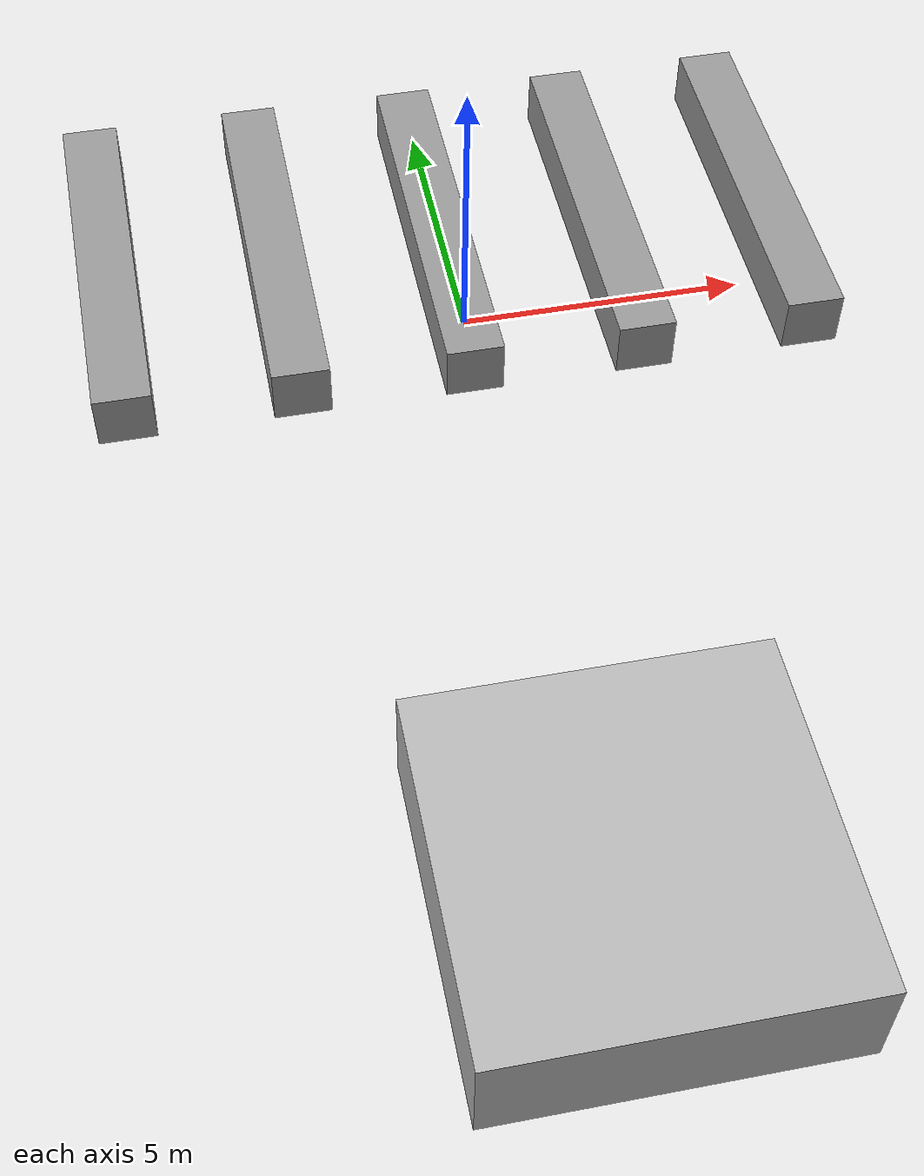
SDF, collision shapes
<?xml version='1.0'?>
<sdf version='1.6'>
  <model name='simulation_ground'>
    <link name='link_1'>
      <inertial>
        <mass>1</mass>
        <inertia>
          <ixx>0.166667</ixx>
          <ixy>0</ixy>
          <ixz>0</ixz>
          <iyy>0.166667</iyy>
          <iyz>0</iyz>
          <izz>0.166667</izz>
        </inertia>
        <pose frame=''>0 0 0 0 -0 0</pose>
      </inertial>
      <pose frame=''>2.92463 2.07612 0.249831 0 -0 0</pose>
      <gravity>1</gravity>
      <self_collide>0</self_collide>
      <kinematic>0</kinematic>
      <enable_wind>0</enable_wind>
      <visual name='visual'>
        <pose frame=''>0 0 0 0 -0 0</pose>
        <geometry>
          <box>
            <size>1 7 1</size>
          </box>
        </geometry>
        <material>
          <lighting>1</lighting>
          <script>
            <uri>file://media/materials/scripts/gazebo.material</uri>
            <name>Gazebo/Grey</name>
          </script>
          <shader type='vertex'>
            <normal_map>__default__</normal_map>
          </shader>
          <ambient>0.3 0.3 0.3 1</ambient>
          <diffuse>0.7 0.7 0.7 1</diffuse>
          <specular>0.01 0.01 0.01 1</specular>
          <emissive>0 0 0 1</emissive>
        </material>
        <transparency>0</transparency>
        <cast_shadows>1</cast_shadows>
      </visual>
      <collision name='collision'>
        <laser_retro>0</laser_retro>
        <max_contacts>10</max_contacts>
        <pose frame=''>0 0 0 0 -0 0</pose>
        <geometry>
          <box>
            <size>1 7 1</size>
          </box>
        </geometry>
        <surface>
          <friction>
            <ode>
              <mu>1</mu>
              <mu2>1</mu2>
              <fdir1>0 0 0</fdir1>
              <slip1>0</slip1>
              <slip2>0</slip2>
            </ode>
            <torsional>
              <coefficient>1</coefficient>
              <patch_radius>0</patch_radius>
              <surface_radius>0</surface_radius>
              <use_patch_radius>1</use_patch_radius>
              <ode>
                <slip>0</slip>
              </ode>
            </torsional>
          </friction>
          <bounce>
            <restitution_coefficient>0</restitution_coefficient>
            <threshold>1e+06</threshold>
          </bounce>
          <contact>
            <collide_without_contact>0</collide_without_contact>
            <collide_without_contact_bitmask>1</collide_without_contact_bitmask>
            <collide_bitmask>1</collide_bitmask>
            <ode>
              <soft_cfm>0</soft_cfm>
              <soft_erp>0.2</soft_erp>
              <kp>1e+13</kp>
              <kd>1</kd>
              <max_vel>0.01</max_vel>
              <min_depth>0</min_depth>
            </ode>
            <bullet>
              <split_impulse>1</split_impulse>
              <split_impulse_penetration_threshold>-0.01</split_impulse_penetration_threshold>
              <soft_cfm>0</soft_cfm>
              <soft_erp>0.2</soft_erp>
              <kp>1e+13</kp>
              <kd>1</kd>
            </bullet>
          </contact>
        </surface>
      </collision>
    </link>
    <link name='link_1_clone'>
      <inertial>
        <mass>1</mass>
        <inertia>
          <ixx>0.166667</ixx>
          <ixy>0</ixy>
          <ixz>0</ixz>
          <iyy>0.166667</iyy>
          <iyz>0</iyz>
          <izz>0.166667</izz>
        </inertia>
        <pose frame=''>0 0 0 0 -0 0</pose>
      </inertial>
      <pose frame=''>-0.095636 2.07867 0.249831 0 -0 0</pose>
      <gravity>1</gravity>
      <self_collide>0</self_collide>
      <kinematic>0</kinematic>
      <enable_wind>0</enable_wind>
      <visual name='visual'>
        <pose frame=''>0 0 0 0 -0 0</pose>
        <geometry>
          <box>
            <size>1 7 1</size>
          </box>
        </geometry>
        <material>
          <lighting>1</lighting>
          <script>
            <uri>file://media/materials/scripts/gazebo.material</uri>
            <name>Gazebo/Grey</name>
          </script>
          <shader type='vertex'>
            <normal_map>__default__</normal_map>
          </shader>
          <ambient>0.3 0.3 0.3 1</ambient>
          <diffuse>0.7 0.7 0.7 1</diffuse>
          <specular>0.01 0.01 0.01 1</specular>
          <emissive>0 0 0 1</emissive>
        </material>
        <transparency>0</transparency>
        <cast_shadows>1</cast_shadows>
      </visual>
      <collision name='collision'>
        <laser_retro>0</laser_retro>
        <max_contacts>10</max_contacts>
        <pose frame=''>0 0 0 0 -0 0</pose>
        <geometry>
          <box>
            <size>1 7 1</size>
          </box>
        </geometry>
        <surface>
          <friction>
            <ode>
              <mu>1</mu>
              <mu2>1</mu2>
              <fdir1>0 0 0</fdir1>
              <slip1>0</slip1>
              <slip2>0</slip2>
            </ode>
            <torsional>
              <coefficient>1</coefficient>
              <patch_radius>0</patch_radius>
              <surface_radius>0</surface_radius>
              <use_patch_radius>1</use_patch_radius>
              <ode>
                <slip>0</slip>
              </ode>
            </torsional>
          </friction>
          <bounce>
            <restitution_coefficient>0</restitution_coefficient>
            <threshold>1e+06</threshold>
          </bounce>
          <contact>
            <collide_without_contact>0</collide_without_contact>
            <collide_without_contact_bitmask>1</collide_without_contact_bitmask>
            <collide_bitmask>1</collide_bitmask>
            <ode>
              <soft_cfm>0</soft_cfm>
              <soft_erp>0.2</soft_erp>
              <kp>1e+13</kp>
              <kd>1</kd>
              <max_vel>0.01</max_vel>
              <min_depth>0</min_depth>
            </ode>
            <bullet>
              <split_impulse>1</split_impulse>
              <split_impulse_penetration_threshold>-0.01</split_impulse_penetration_threshold>
              <soft_cfm>0</soft_cfm>
              <soft_erp>0.2</soft_erp>
              <kp>1e+13</kp>
              <kd>1</kd>
            </bullet>
          </contact>
        </surface>
      </collision>
    </link>
    <link name='link_1_clone_0'>
      <inertial>
        <mass>1</mass>
        <inertia>
          <ixx>0.166667</ixx>
          <ixy>0</ixy>
          <ixz>0</ixz>
          <iyy>0.166667</iyy>
          <iyz>0</iyz>
          <izz>0.166667</izz>
        </inertia>
        <pose frame=''>0 0 0 0 -0 0</pose>
      </inertial>
      <pose frame=''>5.94268 2.09476 0.249831 0 -0 0</pose>
      <gravity>1</gravity>
      <self_collide>0</self_collide>
      <kinematic>0</kinematic>
      <enable_wind>0</enable_wind>
      <visual name='visual'>
        <pose frame=''>0 0 0 0 -0 0</pose>
        <geometry>
          <box>
            <size>1 7 1</size>
          </box>
        </geometry>
        <material>
          <lighting>1</lighting>
          <script>
            <uri>file://media/materials/scripts/gazebo.material</uri>
            <name>Gazebo/Grey</name>
          </script>
          <shader type='vertex'>
            <normal_map>__default__</normal_map>
          </shader>
          <ambient>0.3 0.3 0.3 1</ambient>
          <diffuse>0.7 0.7 0.7 1</diffuse>
          <specular>0.01 0.01 0.01 1</specular>
          <emissive>0 0 0 1</emissive>
        </material>
        <transparency>0</transparency>
        <cast_shadows>1</cast_shadows>
      </visual>
      <collision name='collision'>
        <laser_retro>0</laser_retro>
        <max_contacts>10</max_contacts>
        <pose frame=''>0 0 0 0 -0 0</pose>
        <geometry>
          <box>
            <size>1 7 1</size>
          </box>
        </geometry>
        <surface>
          <friction>
            <ode>
              <mu>1</mu>
              <mu2>1</mu2>
              <fdir1>0 0 0</fdir1>
              <slip1>0</slip1>
              <slip2>0</slip2>
            </ode>
            <torsional>
              <coefficient>1</coefficient>
              <patch_radius>0</patch_radius>
              <surface_radius>0</surface_radius>
              <use_patch_radius>1</use_patch_radius>
              <ode>
                <slip>0</slip>
              </ode>
            </torsional>
          </friction>
          <bounce>
            <restitution_coefficient>0</restitution_coefficient>
            <threshold>1e+06</threshold>
          </bounce>
          <contact>
            <collide_without_contact>0</collide_without_contact>
            <collide_without_contact_bitmask>1</collide_without_contact_bitmask>
            <collide_bitmask>1</collide_bitmask>
            <ode>
              <soft_cfm>0</soft_cfm>
              <soft_erp>0.2</soft_erp>
              <kp>1e+13</kp>
              <kd>1</kd>
              <max_vel>0.01</max_vel>
              <min_depth>0</min_depth>
            </ode>
            <bullet>
              <split_impulse>1</split_impulse>
              <split_impulse_penetration_threshold>-0.01</split_impulse_penetration_threshold>
              <soft_cfm>0</soft_cfm>
              <soft_erp>0.2</soft_erp>
              <kp>1e+13</kp>
              <kd>1</kd>
            </bullet>
          </contact>
        </surface>
      </collision>
    </link>
    <link name='link_1_clone_1'>
      <inertial>
        <mass>1</mass>
        <inertia>
          <ixx>0.166667</ixx>
          <ixy>0</ixy>
          <ixz>0</ixz>
          <iyy>0.166667</iyy>
          <iyz>0</iyz>
          <izz>0.166667</izz>
        </inertia>
        <pose frame=''>0 0 0 0 -0 0</pose>
      </inertial>
      <pose frame=''>-3.09337 2.11038 0.249831 0 -0 0</pose>
      <gravity>1</gravity>
      <self_collide>0</self_collide>
      <kinematic>0</kinematic>
      <enable_wind>0</enable_wind>
      <visual name='visual'>
        <pose frame=''>0 0 0 0 -0 0</pose>
        <geometry>
          <box>
            <size>1 7 1</size>
          </box>
        </geometry>
        <material>
          <lighting>1</lighting>
          <script>
            <uri>file://media/materials/scripts/gazebo.material</uri>
            <name>Gazebo/Grey</name>
          </script>
          <shader type='vertex'>
            <normal_map>__default__</normal_map>
          </shader>
          <ambient>0.3 0.3 0.3 1</ambient>
          <diffuse>0.7 0.7 0.7 1</diffuse>
          <specular>0.01 0.01 0.01 1</specular>
          <emissive>0 0 0 1</emissive>
        </material>
        <transparency>0</transparency>
        <cast_shadows>1</cast_shadows>
      </visual>
      <collision name='collision'>
        <laser_retro>0</laser_retro>
        <max_contacts>10</max_contacts>
        <pose frame=''>0 0 0 0 -0 0</pose>
        <geometry>
          <box>
            <size>1 7 1</size>
          </box>
        </geometry>
        <surface>
          <friction>
            <ode>
              <mu>1</mu>
              <mu2>1</mu2>
              <fdir1>0 0 0</fdir1>
              <slip1>0</slip1>
              <slip2>0</slip2>
            </ode>
            <torsional>
              <coefficient>1</coefficient>
              <patch_radius>0</patch_radius>
              <surface_radius>0</surface_radius>
              <use_patch_radius>1</use_patch_radius>
              <ode>
                <slip>0</slip>
              </ode>
            </torsional>
          </friction>
          <bounce>
            <restitution_coefficient>0</restitution_coefficient>
            <threshold>1e+06</threshold>
          </bounce>
          <contact>
            <collide_without_contact>0</collide_without_contact>
            <collide_without_contact_bitmask>1</collide_without_contact_bitmask>
            <collide_bitmask>1</collide_bitmask>
            <ode>
              <soft_cfm>0</soft_cfm>
              <soft_erp>0.2</soft_erp>
              <kp>1e+13</kp>
              <kd>1</kd>
              <max_vel>0.01</max_vel>
              <min_depth>0</min_depth>
            </ode>
            <bullet>
              <split_impulse>1</split_impulse>
              <split_impulse_penetration_threshold>-0.01</split_impulse_penetration_threshold>
              <soft_cfm>0</soft_cfm>
              <soft_erp>0.2</soft_erp>
              <kp>1e+13</kp>
              <kd>1</kd>
            </bullet>
          </contact>
        </surface>
      </collision>
    </link>
    <link name='link_1_clone_2'>
      <inertial>
        <mass>1</mass>
        <inertia>
          <ixx>0.166667</ixx>
          <ixy>0</ixy>
          <ixz>0</ixz>
          <iyy>0.166667</iyy>
          <iyz>0</iyz>
          <izz>0.166667</izz>
        </inertia>
        <pose frame=''>0 0 0 0 -0 0</pose>
      </inertial>
      <pose frame=''>-6.099 2.08964 0.249831 0 -0 0</pose>
      <gravity>1</gravity>
      <self_collide>0</self_collide>
      <kinematic>0</kinematic>
      <enable_wind>0</enable_wind>
      <visual name='visual'>
        <pose frame=''>0 0 0 0 -0 0</pose>
        <geometry>
          <box>
            <size>1 7 1</size>
          </box>
        </geometry>
        <material>
          <lighting>1</lighting>
          <script>
            <uri>file://media/materials/scripts/gazebo.material</uri>
            <name>Gazebo/Grey</name>
          </script>
          <shader type='vertex'>
            <normal_map>__default__</normal_map>
          </shader>
          <ambient>0.3 0.3 0.3 1</ambient>
          <diffuse>0.7 0.7 0.7 1</diffuse>
          <specular>0.01 0.01 0.01 1</specular>
          <emissive>0 0 0 1</emissive>
        </material>
        <transparency>0</transparency>
        <cast_shadows>1</cast_shadows>
      </visual>
      <collision name='collision'>
        <laser_retro>0</laser_retro>
        <max_contacts>10</max_contacts>
        <pose frame=''>0 0 0 0 -0 0</pose>
        <geometry>
          <box>
            <size>1 7 1</size>
          </box>
        </geometry>
        <surface>
          <friction>
            <ode>
              <mu>1</mu>
              <mu2>1</mu2>
              <fdir1>0 0 0</fdir1>
              <slip1>0</slip1>
              <slip2>0</slip2>
            </ode>
            <torsional>
              <coefficient>1</coefficient>
              <patch_radius>0</patch_radius>
              <surface_radius>0</surface_radius>
              <use_patch_radius>1</use_patch_radius>
              <ode>
                <slip>0</slip>
              </ode>
            </torsional>
          </friction>
          <bounce>
            <restitution_coefficient>0</restitution_coefficient>
            <threshold>1e+06</threshold>
          </bounce>
          <contact>
            <collide_without_contact>0</collide_without_contact>
            <collide_without_contact_bitmask>1</collide_without_contact_bitmask>
            <collide_bitmask>1</collide_bitmask>
            <ode>
              <soft_cfm>0</soft_cfm>
              <soft_erp>0.2</soft_erp>
              <kp>1e+13</kp>
              <kd>1</kd>
              <max_vel>0.01</max_vel>
              <min_depth>0</min_depth>
            </ode>
            <bullet>
              <split_impulse>1</split_impulse>
              <split_impulse_penetration_threshold>-0.01</split_impulse_penetration_threshold>
              <soft_cfm>0</soft_cfm>
              <soft_erp>0.2</soft_erp>
              <kp>1e+13</kp>
              <kd>1</kd>
            </bullet>
          </contact>
        </surface>
      </collision>
    </link>
    <model name='box_target_green'>
      <pose frame=''>0.420694 -10.4496 -1.24915 0 0 -1.57206</pose>
      <static>1</static>
      <link name='link'>
        <collision name='collision'>
          <geometry>
            <box>
              <size>6 6 2</size>
            </box>
          </geometry>
        </collision>
        <visual name='visual'>
          <geometry>
            <mesh>
              <uri>model://box_target_green/meshes/mesh.dae</uri>
            </mesh>
          </geometry>
        </visual>
      </link>
    </model>
    <static>0</static>
    <allow_auto_disable>1</allow_auto_disable>
  </model>
</sdf>
